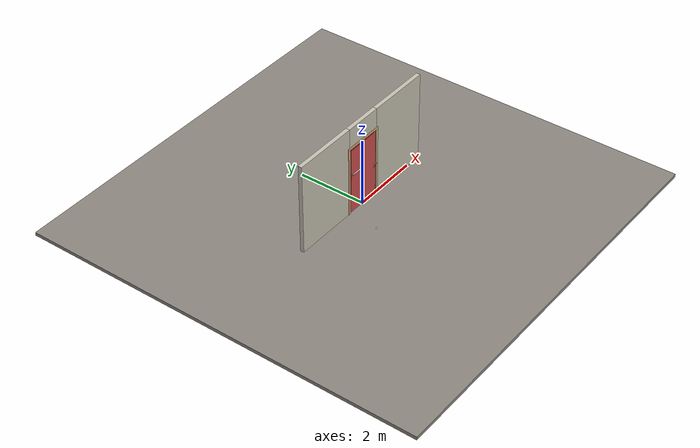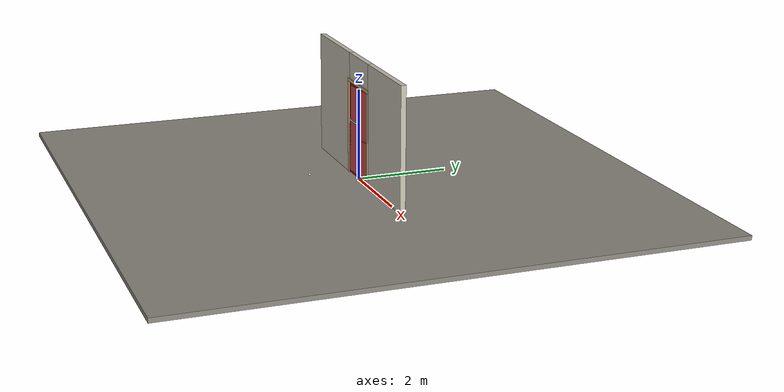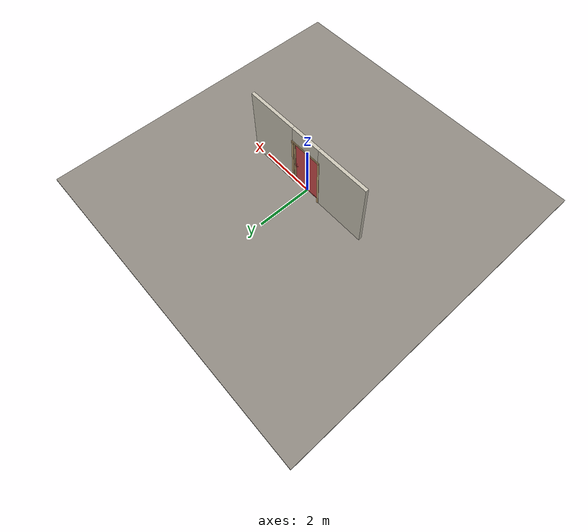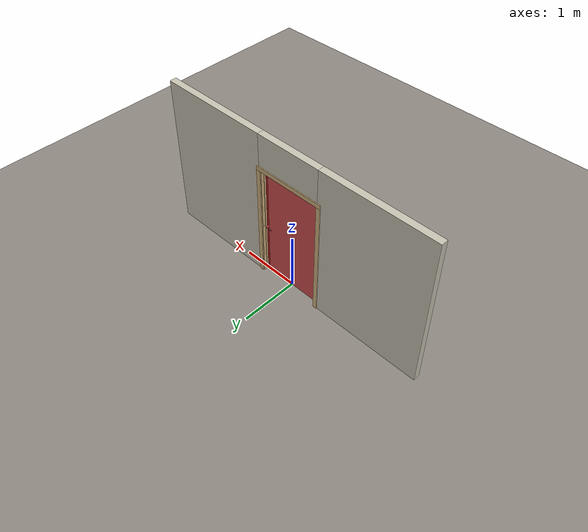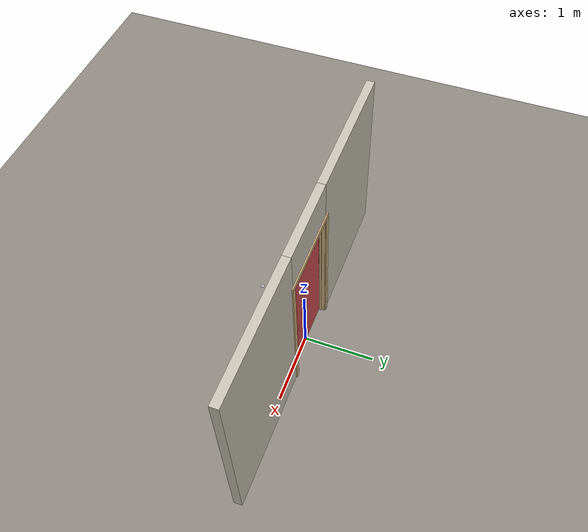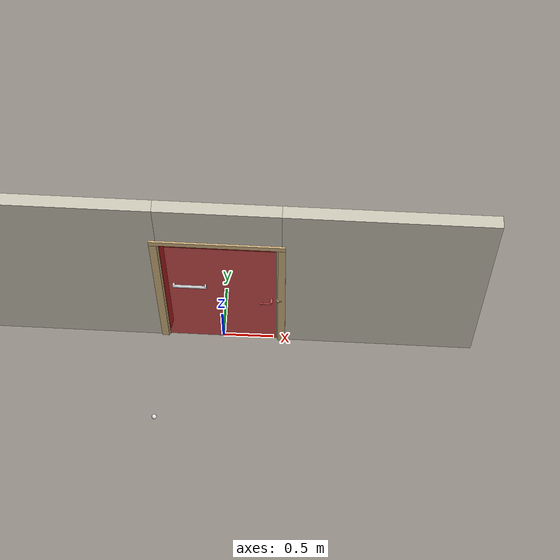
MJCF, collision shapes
<?xml version="1.0" ?>
<mujoco model="db0795_swing_single_full">
  <compiler angle="radian" meshdir="../../hardware" texturedir="../../textures" autolimits="true" inertiafromgeom="false"/>
  <option timestep="0.002" integrator="implicitfast" cone="elliptic" impratio="10" noslip_iterations="3">
    <flag multiccd="enable"/>
  </option>
  <size memory="16M"/>
  <default>
    <geom condim="4" solref="0.005 1" solimp="0.95 0.99 0.001"/>
    <joint solreflimit="0.005 1" solimplimit="0.95 0.99 0.001"/>
    <tendon solreflimit="0.005 1"/>
    <equality solref="0.002 1"/>
  </default>
  <visual>
    <headlight ambient="0.4 0.4 0.4" diffuse="0.7 0.7 0.7" specular="0.2 0.2 0.2"/>
    <quality shadowsize="4096"/>
    <map znear="0.01" zfar="60"/>
  </visual>
  <asset>
    <mesh name="hinge_15fcbc0360" file="hinge_15fcbc0360.obj"/>
    <mesh name="hinge_jamb_ba35ce4e6a" file="hinge_jamb_ba35ce4e6a.obj"/>
    <mesh name="lever_748f08efca" file="lever_748f08efca.obj"/>
    <mesh name="peephole_f829311a59" file="peephole_f829311a59.obj"/>
    <material name="mat_floor" rgba="0.55 0.53 0.5 1" specular="0.2" shininess="0.15" reflectance="0"/>
    <material name="mat_wall" rgba="0.78 0.76 0.7 1" specular="0.2" shininess="0.1" reflectance="0"/>
    <material name="mat_leaf" rgba="0.65 0.1 0.1 1" specular="0.2" shininess="0.34" reflectance="0"/>
    <material name="mat_mesh_infill" rgba="0.6 0.62 0.64 0.55" specular="0.68" shininess="0.3" reflectance="0.1"/>
    <material name="mat_hinge" rgba="0.65 0.66 0.68 1" specular="0.74" shininess="0.5" reflectance="0.36"/>
    <material name="mat_op_chrome" rgba="0.9 0.9 0.92 1" specular="0.8" shininess="0.9" reflectance="0.4"/>
    <material name="mat_trim" rgba="0.85 0.66 0.3 1" specular="0.8" shininess="0.75" reflectance="0.4"/>
    <material name="mat_bolt" rgba="0.85 0.66 0.3 1" specular="0.8" shininess="0.75" reflectance="0.4"/>
    <material name="mat_frame" rgba="0.82 0.7 0.5 1" specular="0.2" shininess="0.45" reflectance="0"/>
    <material name="mat_seal" rgba="0.1 0.1 0.1 1" specular="0.2" shininess="0.1" reflectance="0"/>
    <material name="mat_closer" rgba="0.8 0.81 0.83 1" specular="0.8" shininess="0.6" reflectance="0.4"/>
    <material name="mat_peephole" rgba="0.85 0.66 0.3 1" specular="0.8" shininess="0.75" reflectance="0.4"/>
    <material name="mat_stop" rgba="0.9 0.9 0.92 1" specular="0.8" shininess="0.9" reflectance="0.4"/>
    <texture name="skybox" type="skybox" builtin="gradient" rgb1="0.6 0.7 0.85" rgb2="0.9 0.92 0.95" width="256" height="256"/>
  </asset>
  <worldbody>
    <light name="sun" pos="1.5 -2.5 4" dir="-0.3 0.5 -0.8" directional="true" diffuse="0.8 0.8 0.8" specular="0.3 0.3 0.3" castshadow="true"/>
    <light name="fill" pos="-1.5 2.5 3" dir="0.3 -0.5 -0.7" directional="true" diffuse="0.35 0.35 0.4" castshadow="false"/>
    <camera name="robot_view" pos="0 -2.505687 1.734312" xyaxes="1 0 0 0 0.26963 0.962964" fovy="52"/>
    <camera name="far_view" pos="0 2.578688 1.734312" xyaxes="-1 0 0 0 -0.26963 0.962964" fovy="52"/>
    <camera name="iso" pos="1.932062 -2.098937 2.141063" xyaxes="0.741536 0.670913 0 -0.242917 0.268487 0.932151" fovy="46"/>
    <camera name="detail_handle" pos="0.5784 -0.869 1.245" xyaxes="0.97561 0.219512 0 -0.070934 0.315262 0.94635" fovy="38"/>
    <geom name="floor" type="box" size="6 6 0.05" pos="0 0 -0.05" material="mat_floor" group="0" contype="1" conaffinity="1" friction="0.8 0.005 0.0001" density="2400"/>
    <geom name="wall_left" type="box" size="0.972 0.0575 1.35" pos="-1.528 0.0365 1.35" material="mat_wall" group="0" contype="1" conaffinity="1" friction="0.6 0.005 0.0001" density="800"/>
    <geom name="wall_right" type="box" size="0.957 0.0575 1.35" pos="1.543 0.0365 1.35" material="mat_wall" group="0" contype="1" conaffinity="1" friction="0.6 0.005 0.0001" density="800"/>
    <geom name="wall_header" type="box" size="0.571 0.0575 0.303" pos="0.015 0.0365 2.397" material="mat_wall" group="0" contype="1" conaffinity="1" friction="0.6 0.005 0.0001" density="800"/>
    <geom name="hinge_0_jamb" type="mesh" mesh="hinge_jamb_ba35ce4e6a" pos="-0.534 -0.021 0.259" material="mat_hinge" group="1" contype="0" conaffinity="0" density="7850"/>
    <geom name="hinge_1_jamb" type="mesh" mesh="hinge_jamb_ba35ce4e6a" pos="-0.534 -0.021 1.025" material="mat_hinge" group="1" contype="0" conaffinity="0" density="7850"/>
    <geom name="hinge_2_jamb" type="mesh" mesh="hinge_jamb_ba35ce4e6a" pos="-0.534 -0.021 1.861" material="mat_hinge" group="1" contype="0" conaffinity="0" density="7850"/>
    <geom name="jamb_hinge" type="box" size="0.0095 0.0575 1.0225" pos="-0.5465 0.0365 1.0225" material="mat_frame" group="0" contype="1" conaffinity="1" friction="0.6 0.005 0.0001" density="400"/>
    <geom name="strike_965_wall_n" type="box" size="0.0245 0.04425 0.0115" pos="0.5615 0.04975 0.965" material="mat_frame" group="0" contype="1" conaffinity="1" friction="0.6 0.005 0.0001" density="400"/>
    <geom name="strike_965_wall_p" type="box" size="0.0245 0.008 0.0115" pos="0.5615 -0.0135 0.965" material="mat_frame" group="0" contype="1" conaffinity="1" friction="0.6 0.005 0.0001" density="400"/>
    <geom name="strike_965_ramp" type="box" size="0.0245 0.015977 0.0115" pos="0.565502 -0.028066 0.965" quat="0.984601 0 0 0.174819" material="mat_frame" group="0" contype="1" conaffinity="1" friction="0.12 0.005 0.0001" density="400"/>
    <geom name="strike_965_back" type="box" size="0.0175 0.0055 0.0115" pos="0.5685 0 0.965" material="mat_frame" group="0" contype="1" conaffinity="1" friction="0.6 0.005 0.0001" density="400"/>
    <geom name="jamb_strike_0" type="box" size="0.0245 0.0575 0.47675" pos="0.5615 0.0365 0.47675" material="mat_frame" group="0" contype="1" conaffinity="1" friction="0.6 0.005 0.0001" density="400"/>
    <geom name="jamb_strike_1" type="box" size="0.0245 0.0575 0.53425" pos="0.5615 0.0365 1.51075" material="mat_frame" group="0" contype="1" conaffinity="1" friction="0.6 0.005 0.0001" density="400"/>
    <geom name="jamb_head" type="box" size="0.571 0.0575 0.0095" pos="0.015 0.0365 2.0545" material="mat_frame" group="0" contype="1" conaffinity="1" friction="0.6 0.005 0.0001" density="400"/>
    <geom name="head_stud" type="box" size="0.571 0.0575 0.015" pos="0.015 0.0365 2.079" material="mat_wall" group="0" contype="1" conaffinity="1" friction="0.6 0.005 0.0001" density="500"/>
    <geom name="stop_hinge" type="box" size="0.0055 0.016 1.0225" pos="-0.5315 0.0305 1.0225" material="mat_frame" group="0" contype="1" conaffinity="1" friction="0.6 0.005 0.0001" density="400"/>
    <geom name="stop_strike" type="box" size="0.0055 0.016 1.0225" pos="0.5315 0.0305 1.0225" material="mat_frame" group="0" contype="1" conaffinity="1" friction="0.6 0.005 0.0001" density="400"/>
    <geom name="stop_head" type="box" size="0.537 0.016 0.0055" pos="0 0.0305 2.0395" material="mat_frame" group="0" contype="1" conaffinity="1" friction="0.6 0.005 0.0001" density="400"/>
    <geom name="seal_hinge" type="box" size="0.004 0.003 1.0225" pos="-0.534 0.017 1.0225" material="mat_seal" group="1" contype="0" conaffinity="0" density="1100"/>
    <geom name="seal_strike" type="box" size="0.004 0.003 1.0225" pos="0.534 0.017 1.0225" material="mat_seal" group="1" contype="0" conaffinity="0" density="1100"/>
    <geom name="seal_head" type="box" size="0.517 0.003 0.008" pos="0 0.017 2.033" material="mat_seal" group="1" contype="0" conaffinity="0" density="1100"/>
    <geom name="casing_l_n" type="box" size="0.035 0.008 1.032" pos="-0.586 -0.029 1.0225" material="mat_frame" group="2" contype="0" conaffinity="0" density="400"/>
    <geom name="casing_r_n" type="box" size="0.035 0.008 1.032" pos="0.586 -0.029 1.0225" material="mat_frame" group="2" contype="0" conaffinity="0" density="400"/>
    <geom name="casing_h_n" type="box" size="0.621 0.008 0.035" pos="0 -0.029 2.094" material="mat_frame" group="2" contype="0" conaffinity="0" density="400"/>
    <geom name="casing_l_p" type="box" size="0.035 0.008 1.032" pos="-0.586 0.102 1.0225" material="mat_frame" group="2" contype="0" conaffinity="0" density="400"/>
    <geom name="casing_r_p" type="box" size="0.035 0.008 1.032" pos="0.586 0.102 1.0225" material="mat_frame" group="2" contype="0" conaffinity="0" density="400"/>
    <geom name="casing_h_p" type="box" size="0.621 0.008 0.035" pos="0 0.102 2.094" material="mat_frame" group="2" contype="0" conaffinity="0" density="400"/>
    <geom name="floor_stop_dome" type="sphere" size="0.025" pos="-0.63297 -0.922756 0" material="mat_stop" group="0" contype="1" conaffinity="1" friction="0.6 0.005 0.0001" density="7000"/>
    <site name="approach_point" pos="0 -1.5 0" quat="1 0 0 0" size="0.05" rgba="0.2 0.9 0.2 0.5" group="4"/>
    <site name="goal_point" pos="0 1.5 0" quat="1 0 0 0" size="0.05" rgba="0.2 0.9 0.2 0.5" group="4"/>
    <site name="door_plane_center" pos="0 0 1.0225" quat="1 0 0 0" size="0.02" rgba="0.2 0.9 0.2 0.5" group="4"/>
    <body name="leaf" pos="-0.537 0 0">
      <inertial pos="0.534098 -0.000214 1.025943" mass="164.933852" quat="-0.499936 0.499526 0.500421 0.500118" diaginertia="15.728331579 56.57374608 72.277837141"/>
      <joint name="leaf_hinge" type="hinge" axis="0 0 -1" pos="0.003 -0.021 0" limited="true" range="0 1.658063" solreflimit="0.02 1" damping="4.475663" frictionloss="3.1914" stiffness="3" springref="-1.38294" armature="0.02"/>
      <geom name="leaf_slab_col" type="box" size="0.5335 0.014 1.016" pos="0.5365 0 1.025" material="mat_leaf" group="3" contype="1" conaffinity="1" rgba="0.8 0.3 0.3 0.25" friction="0.35 0.005 0.0001" density="1"/>
      <geom name="leaf_rail_b" type="box" size="0.5335 0.014 0.0225" pos="0.5365 0 0.0315" material="mat_leaf" group="1" contype="0" conaffinity="0" density="1"/>
      <geom name="leaf_rail_t" type="box" size="0.5335 0.014 0.0225" pos="0.5365 0 2.0185" material="mat_leaf" group="1" contype="0" conaffinity="0" density="1"/>
      <geom name="leaf_stile_h" type="box" size="0.0225 0.014 1.016" pos="0.0255 0 1.025" material="mat_leaf" group="1" contype="0" conaffinity="0" density="1"/>
      <geom name="leaf_stile_l" type="box" size="0.0225 0.014 1.016" pos="1.0475 0 1.025" material="mat_leaf" group="1" contype="0" conaffinity="0" density="1"/>
      <geom name="leaf_mesh" type="box" size="0.4885 0.0015 0.971" pos="0.5365 0 1.025" material="mat_mesh_infill" group="1" contype="0" conaffinity="0" density="1"/>
      <geom name="hinge_0" type="mesh" mesh="hinge_15fcbc0360" pos="0.003 -0.021 0.259" material="mat_hinge" group="1" contype="0" conaffinity="0" density="7850"/>
      <geom name="hinge_1" type="mesh" mesh="hinge_15fcbc0360" pos="0.003 -0.021 1.025" material="mat_hinge" group="1" contype="0" conaffinity="0" density="7850"/>
      <geom name="hinge_2" type="mesh" mesh="hinge_15fcbc0360" pos="0.003 -0.021 1.861" material="mat_hinge" group="1" contype="0" conaffinity="0" density="7850"/>
      <geom name="leaf_latch_bolt_faceplate" type="box" size="0.0006 0.01 0.0215" pos="1.0694 0 0.965" material="mat_bolt" group="1" contype="0" conaffinity="0" density="8500"/>
      <geom name="closer_pneumatic" type="cylinder" size="0.015 0.16" pos="0.25 -0.044 1.2192" quat="0.707107 0 0.707107 0" material="mat_closer" group="1" contype="0" conaffinity="0" density="2700"/>
      <geom name="closer_pneumatic_bracket_0" type="box" size="0.008 0.016 0.018" pos="0.1 -0.03 1.2192" material="mat_closer" group="1" contype="0" conaffinity="0" density="2700"/>
      <geom name="closer_pneumatic_bracket_1" type="box" size="0.008 0.016 0.018" pos="0.4 -0.03 1.2192" material="mat_closer" group="1" contype="0" conaffinity="0" density="2700"/>
      <geom name="peephole" type="mesh" mesh="peephole_f829311a59" pos="0.5365 -0.014 1.509" quat="0.707107 0.707107 0 0" material="mat_peephole" group="2" contype="0" conaffinity="0" density="8500"/>
      <site name="leaf_edge_mid" pos="1.07 0 1.016" quat="1 0 0 0" size="0.02" rgba="0.2 0.9 0.2 0.5" group="4"/>
      <body name="leaf_handle" pos="1.025 0 0.965">
        <inertial pos="-0.024599 0 0" mass="0.833593" quat="0.707107 0 0 -0.707107" diaginertia="0.001178623 0.002522695 0.003564743"/>
        <joint name="leaf_handle_hinge" type="hinge" axis="0 -1 0" limited="true" range="0 0.87" damping="0.205083" frictionloss="0.04" stiffness="0.9" springref="-0.444444" armature="0.01"/>
        <geom name="leaf_handle_spindle" type="cylinder" size="0.006 0.022" pos="0 0 0" quat="0.707107 -0.707107 0 0" material="mat_op_chrome" group="1" contype="0" conaffinity="0" density="7850"/>
        <geom name="leaf_handle_lever_n" type="mesh" mesh="lever_748f08efca" pos="0 -0.014 0" quat="0.707107 0.707107 0 0" material="mat_op_chrome" group="1" contype="0" conaffinity="0" density="3000"/>
        <geom name="leaf_handle_lever_col_n" type="capsule" size="0.008 0.048" pos="-0.056 -0.069 0" quat="0.707107 0 -0.707107 0" material="mat_op_chrome" group="3" contype="1" conaffinity="1" rgba="0.8 0.3 0.3 0.25" friction="0.7 0.01 0.0001" density="3000"/>
        <geom name="leaf_handle_hub_col_n" type="cylinder" size="0.012 0.022" pos="0 -0.044 0" quat="0.707107 -0.707107 0 0" material="mat_op_chrome" group="3" contype="1" conaffinity="1" rgba="0.8 0.3 0.3 0.25" friction="0.6 0.005 0.0001" density="3000"/>
        <geom name="leaf_handle_lever_p" type="mesh" mesh="lever_748f08efca" pos="0 0.014 0" quat="-0.707107 0.707107 0 0" material="mat_op_chrome" group="1" contype="0" conaffinity="0" density="3000"/>
        <geom name="leaf_handle_lever_col_p" type="capsule" size="0.008 0.048" pos="-0.056 0.069 0" quat="0.707107 0 -0.707107 0" material="mat_op_chrome" group="3" contype="1" conaffinity="1" rgba="0.8 0.3 0.3 0.25" friction="0.7 0.01 0.0001" density="3000"/>
        <geom name="leaf_handle_hub_col_p" type="cylinder" size="0.012 0.022" pos="0 0.044 0" quat="0.707107 -0.707107 0 0" material="mat_op_chrome" group="3" contype="1" conaffinity="1" rgba="0.8 0.3 0.3 0.25" friction="0.6 0.005 0.0001" density="3000"/>
        <site name="leaf_handle_grip_n" pos="-0.0896 -0.069 0" quat="1 0 0 0" size="0.012" rgba="0.2 0.9 0.2 0.5" group="4"/>
        <site name="leaf_handle_grip_p" pos="-0.0896 0.069 0" quat="1 0 0 0" size="0.012" rgba="0.2 0.9 0.2 0.5" group="4"/>
      </body>
      <body name="leaf_latch_bolt" pos="1.07 0 0.965">
        <inertial pos="-0.008 0 0" mass="0.014242" quat="0 0 0.707107 0.707107" diaginertia="0.00000011 0.000001386 0.000001386"/>
        <joint name="leaf_latch_bolt_slide" type="slide" axis="-1 0 0" limited="true" range="0 0.01" damping="2" frictionloss="0.3" stiffness="300" springref="-0.006667" armature="0.1"/>
        <geom name="leaf_latch_bolt_capsule" type="capsule" size="0.004 0.014" pos="-0.008 0 0" quat="0.707107 0 0.707107 0" material="mat_bolt" group="0" contype="1" conaffinity="1" friction="0.2 0.005 0.0001" density="8500"/>
      </body>
    </body>
  </worldbody>
  <tendon>
    <fixed name="leaf_latch_bolt_coupling" limited="true" range="0 10">
      <joint joint="leaf_latch_bolt_slide" coef="1"/>
      <joint joint="leaf_handle_hinge" coef="-0.012658"/>
    </fixed>
  </tendon>
  <sensor>
    <jointpos name="leaf_hinge_pos" joint="leaf_hinge"/>
    <jointvel name="leaf_hinge_vel" joint="leaf_hinge"/>
    <jointpos name="leaf_handle_hinge_pos" joint="leaf_handle_hinge"/>
    <jointvel name="leaf_handle_hinge_vel" joint="leaf_handle_hinge"/>
    <jointpos name="leaf_latch_bolt_slide_pos" joint="leaf_latch_bolt_slide"/>
    <jointvel name="leaf_latch_bolt_slide_vel" joint="leaf_latch_bolt_slide"/>
  </sensor>
</mujoco>
